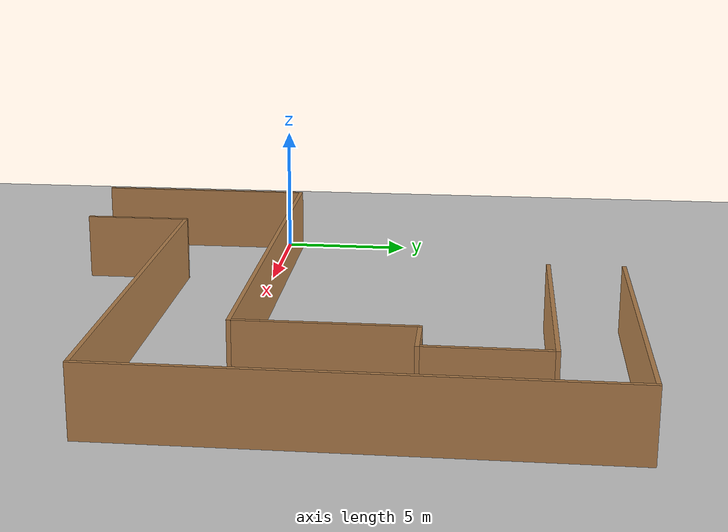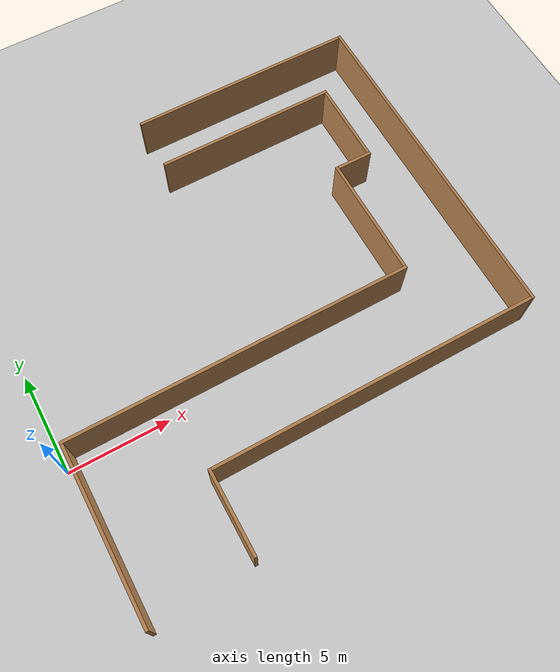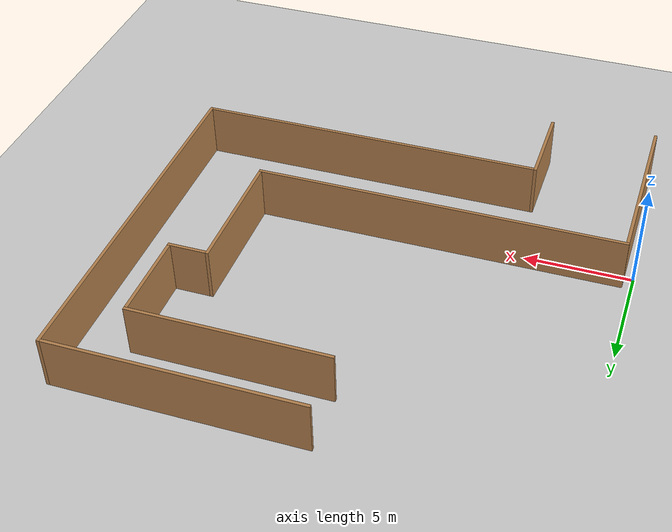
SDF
<sdf version="1.7">
 <world name="default">
  <light name="sun" type="directional">
   <pose>0 0 10 0 -0 0</pose>
   <diffuse>0.8 0.8 0.8 1</diffuse>
   <specular>0.2 0.2 0.2 1</specular>
   <attenuation>
    <range>1000</range>
    <constant>0.9</constant>
    <linear>0.01</linear>
    <quadratic>0.001</quadratic>
   </attenuation>
   <direction>-0.5 0.1 -0.9</direction>
   <spot><inner_angle>0</inner_angle><outer_angle>0</outer_angle><falloff>0</falloff></spot>
  </light>
  <model name="ground_plane">
   <static>1</static>
   <link name="link">
    <collision name="collision">
     <geometry><plane><normal>0 0 1</normal><size>100 100</size></plane></geometry>
     <surface>
      <contact><collide_bitmask>65535</collide_bitmask></contact>
      <friction><ode><mu>100</mu><mu2>50</mu2></ode></friction>
     </surface>
    </collision>
    <visual name="visual">
     <cast_shadows>0</cast_shadows>
     <geometry><plane><normal>0 0 1</normal><size>100 100</size></plane></geometry>
     <material>
      <script><uri>file://media/materials/scripts/gazebo.material</uri><name>Gazebo/Grey</name></script>
     </material>
    </visual>
   </link>
  </model>
  <gravity>0 0 -9.8</gravity>
  <magnetic_field>6e-06 2.3e-05 -4.2e-05</magnetic_field>
  <atmosphere type="adiabatic"/>
  <physics type="ode">
   <max_step_size>0.001</max_step_size>
   <real_time_factor>1</real_time_factor>
   <real_time_update_rate>1000</real_time_update_rate>
  </physics>
  <scene><ambient>0.4 0.4 0.4 1</ambient><background>0.7 0.7 0.7 1</background><shadows>1</shadows></scene>
  <spherical_coordinates>
   <surface_model>EARTH_WGS84</surface_model>
   <latitude_deg>0</latitude_deg>
   <longitude_deg>0</longitude_deg>
   <elevation>0</elevation>
   <heading_deg>0</heading_deg>
  </spherical_coordinates>
  <model name="RobotPath">
   <pose>11.0937 2.8853 0 0 -0 0</pose>
   <link name="Wall_14">
    <collision name="Wall_14_Collision">
     <geometry><box><size>9.098 0.15 2.5</size></box></geometry>
     <pose>0 0 1.25 0 -0 0</pose>
    </collision>
    <visual name="Wall_14_Visual">
     <pose>0 0 1.25 0 -0 0</pose>
     <geometry><box><size>9.098 0.15 2.5</size></box></geometry>
     <material>
      <script><uri>file://media/materials/scripts/gazebo.material</uri><name>Gazebo/Wood</name></script>
      <ambient>1 1 1 1</ambient>
     </material>
     <meta><layer>0</layer></meta>
    </visual>
    <pose>3.704 7.972 0 0 -0 0</pose>
   </link>
   <link name="Wall_20">
    <collision name="Wall_20_Collision">
     <geometry><box><size>4.064 0.15 2.5</size></box></geometry>
     <pose>0 0 1.25 0 -0 0</pose>
    </collision>
    <visual name="Wall_20_Visual">
     <pose>0 0 1.25 0 -0 0</pose>
     <geometry><box><size>4.064 0.15 2.5</size></box></geometry>
     <material>
      <script><uri>file://media/materials/scripts/gazebo.material</uri><name>Gazebo/Wood</name></script>
      <ambient>1 1 1 1</ambient>
     </material>
     <meta><layer>0</layer></meta>
    </visual>
    <pose>8.178 5.865 0 0 -0 -1.5708</pose>
   </link>
   <link name="Wall_28">
    <collision name="Wall_28_Collision">
     <geometry><box><size>11.384 0.15 2.5</size></box></geometry>
     <pose>0 0 1.25 0 -0 0</pose>
    </collision>
    <visual name="Wall_28_Visual">
     <pose>0 0 1.25 0 -0 0</pose>
     <geometry><box><size>11.384 0.15 2.5</size></box></geometry>
     <material>
      <script><uri>file://media/materials/scripts/gazebo.material</uri><name>Gazebo/Wood</name></script>
      <ambient>1 1 1 1</ambient>
     </material>
     <meta><layer>0</layer></meta>
    </visual>
    <pose>4.84711 10.662 0 0 -0 0</pose>
   </link>
   <link name="Wall_30">
    <collision name="Wall_30_Collision">
     <geometry><box><size>17.164 0.15 2.5</size></box></geometry>
     <pose>0 0 1.25 0 -0 0</pose>
    </collision>
    <visual name="Wall_30_Visual">
     <pose>0 0 1.25 0 -0 0</pose>
     <geometry><box><size>17.164 0.15 2.5</size></box></geometry>
     <material>
      <script><uri>file://media/materials/scripts/gazebo.material</uri><name>Gazebo/Wood</name></script>
      <ambient>1 1 1 1</ambient>
     </material>
     <meta><layer>0</layer></meta>
    </visual>
    <pose>10.614 2.155 0 0 -0 -1.5708</pose>
   </link>
   <link name="Wall_32">
    <collision name="Wall_32_Collision">
     <geometry><box><size>1.778 0.15 2.5</size></box></geometry>
     <pose>0 0 1.25 0 -0 0</pose>
    </collision>
    <visual name="Wall_32_Visual">
     <pose>0 0 1.25 0 -0 0</pose>
     <geometry><box><size>1.778 0.15 2.5</size></box></geometry>
     <material>
      <script><uri>file://media/materials/scripts/gazebo.material</uri><name>Gazebo/Wood</name></script>
      <ambient>1 1 1 1</ambient>
     </material>
     <meta><layer>0</layer></meta>
    </visual>
    <pose>7.364 3.758 0 0 -0 0</pose>
   </link>
   <link name="Wall_34">
    <collision name="Wall_34_Collision">
     <geometry><box><size>6.096 0.15 2.5</size></box></geometry>
     <pose>0 0 1.25 0 -0 0</pose>
    </collision>
    <visual name="Wall_34_Visual">
     <pose>0 0 1.25 0 -0 0</pose>
     <geometry><box><size>6.096 0.15 2.5</size></box></geometry>
     <material>
      <script><uri>file://media/materials/scripts/gazebo.material</uri><name>Gazebo/Wood</name></script>
      <ambient>1 1 1 1</ambient>
     </material>
     <meta><layer>0</layer></meta>
    </visual>
    <pose>6.4 0.785 0 0 -0 -1.5708</pose>
   </link>
   <link name="Wall_36">
    <collision name="Wall_36_Collision">
     <geometry><box><size>17.164 0.15 2.5</size></box></geometry>
     <pose>0 0 1.25 0 -0 0</pose>
    </collision>
    <visual name="Wall_36_Visual">
     <pose>0 0 1.25 0 -0 0</pose>
     <geometry><box><size>17.164 0.15 2.5</size></box></geometry>
     <material>
      <script><uri>file://media/materials/scripts/gazebo.material</uri><name>Gazebo/Wood</name></script>
      <ambient>1 1 1 1</ambient>
     </material>
     <meta><layer>0</layer></meta>
    </visual>
    <pose>-2.107 -2.338 0 0 -0 0</pose>
   </link>
   <link name="Wall_38">
    <collision name="Wall_38_Collision">
     <geometry><box><size>16.148 0.15 2.5</size></box></geometry>
     <pose>0 0 1.25 0 -0 0</pose>
    </collision>
    <visual name="Wall_38_Visual">
     <pose>0 0 1.25 0 -0 0</pose>
     <geometry><box><size>16.148 0.15 2.5</size></box></geometry>
     <material>
      <script><uri>file://media/materials/scripts/gazebo.material</uri><name>Gazebo/Wood</name></script>
      <ambient>1 1 1 1</ambient>
     </material>
     <meta><layer>0</layer></meta>
    </visual>
    <pose>2.465 -6.352 0 0 -0 0</pose>
   </link>
   <link name="Wall_40">
    <collision name="Wall_40_Collision">
     <geometry><box><size>8.324 0.15 2.5</size></box></geometry>
     <pose>0 0 1.25 0 -0 0</pose>
    </collision>
    <visual name="Wall_40_Visual">
     <pose>0 0 1.25 0 -0 0</pose>
     <geometry><box><size>8.324 0.15 2.5</size></box></geometry>
     <material>
      <script><uri>file://media/materials/scripts/gazebo.material</uri><name>Gazebo/Wood</name></script>
      <ambient>1 1 1 1</ambient>
     </material>
     <meta><layer>0</layer></meta>
    </visual>
    <pose>-10.614 -6.575 0 0 -0 -1.5708</pose>
   </link>
   <link name="Wall_42">
    <collision name="Wall_42_Collision">
     <geometry><box><size>4.06 0.15 2.5</size></box></geometry>
     <pose>0 0 1.25 0 -0 0</pose>
    </collision>
    <visual name="Wall_42_Visual">
     <pose>0 0 1.25 0 -0 0</pose>
     <geometry><box><size>4.06 0.15 2.5</size></box></geometry>
     <material>
      <script><uri>file://media/materials/scripts/gazebo.material</uri><name>Gazebo/Wood</name></script>
      <ambient>1 1 1 1</ambient>
     </material>
     <meta><layer>0</layer></meta>
    </visual>
    <pose>-5.684 -8.307 0 0 -0 -1.5708</pose>
   </link>
   <static>1</static>
  </model>
 </world>
</sdf>
